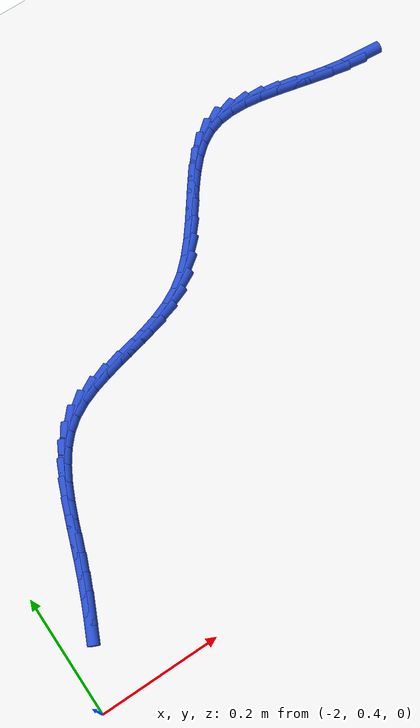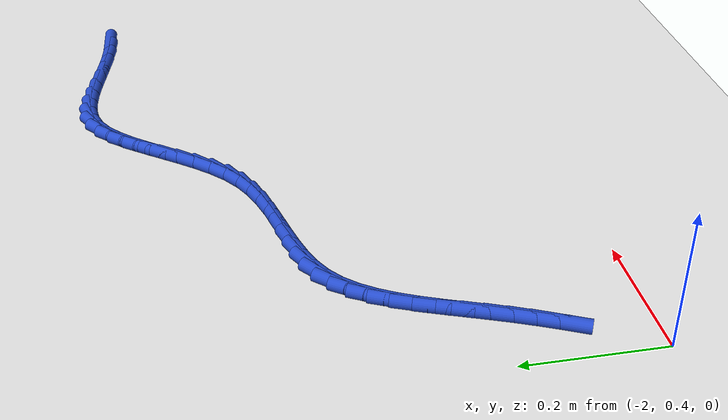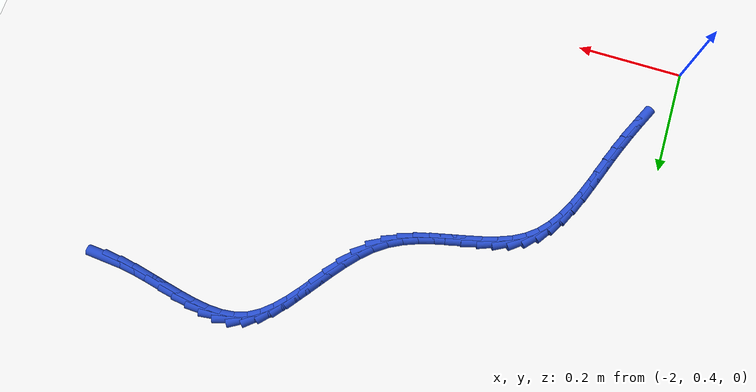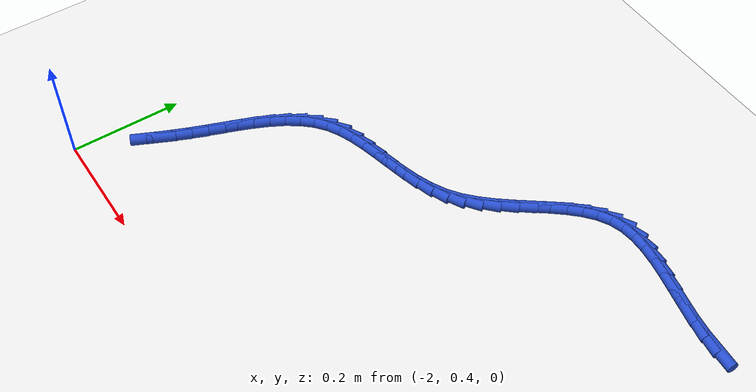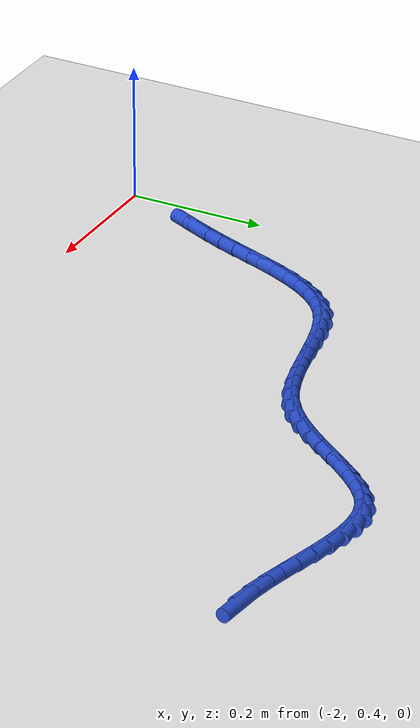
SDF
<sdf version="1.6">
 <world name="default">
  <model name="ground_plane">
   <static>1</static>
   <link name="link">
    <collision name="collision">
     <geometry><plane><normal>0 0 1</normal><size>100 100</size></plane></geometry>
     <surface><friction><ode><mu>100</mu><mu2>50</mu2></ode></friction></surface>
    </collision>
    <visual name="visual">
     <cast_shadows>0</cast_shadows>
     <geometry><plane><normal>0 0 1</normal><size>100 100</size></plane></geometry>
     <material>
      <script><uri>file://media/materials/scripts/gazebo.material</uri><name>Gazebo/WhiteGlow</name></script>
     </material>
    </visual>
   </link>
  </model>
  <model name="line">
   <link name="link_60">
    <pose>-1.07781493956136 1.054151082649088 0.01 0 1.57 -0.08685383289227389</pose>
    <collision name="collision">
     <geometry><cylinder><radius>0.01</radius><length>0.08</length></cylinder></geometry>
    </collision>
    <visual name="visual">
     <material>
      <script><name>Gazebo/Blue</name><uri>file://media/materials/scripts/gazebo.material</uri></script>
     </material>
     <geometry><cylinder><radius>0.01</radius><length>0.08</length></cylinder></geometry>
    </visual>
   </link>
   <link name="link_61">
    <pose>-1.1074726452328654 1.0567334648053341 0.01 0 1.57 -0.16320058160579007</pose>
    <collision name="collision">
     <geometry><cylinder><radius>0.01</radius><length>0.08</length></cylinder></geometry>
    </collision>
    <visual name="visual">
     <material>
      <script><name>Gazebo/Blue</name><uri>file://media/materials/scripts/gazebo.material</uri></script>
     </material>
     <geometry><cylinder><radius>0.01</radius><length>0.08</length></cylinder></geometry>
    </visual>
   </link>
   <link name="link_62">
    <pose>-1.1374213711710932 1.0616649748893732 0.01 0 1.57 -0.21079241466443946</pose>
    <collision name="collision">
     <geometry><cylinder><radius>0.01</radius><length>0.08</length></cylinder></geometry>
    </collision>
    <visual name="visual">
     <material>
      <script><name>Gazebo/Blue</name><uri>file://media/materials/scripts/gazebo.material</uri></script>
     </material>
     <geometry><cylinder><radius>0.01</radius><length>0.08</length></cylinder></geometry>
    </visual>
   </link>
   <link name="link_63">
    <pose>-1.1674057804091076 1.0680807688681473 0.01 0 1.57 -0.23210038443102482</pose>
    <collision name="collision">
     <geometry><cylinder><radius>0.01</radius><length>0.08</length></cylinder></geometry>
    </collision>
    <visual name="visual">
     <material>
      <script><name>Gazebo/Blue</name><uri>file://media/materials/scripts/gazebo.material</uri></script>
     </material>
     <geometry><cylinder><radius>0.01</radius><length>0.08</length></cylinder></geometry>
    </visual>
   </link>
   <link name="link_64">
    <pose>-1.197170528075788 1.075115964322302 0.01 0 1.57 -0.22778869949655273</pose>
    <collision name="collision">
     <geometry><cylinder><radius>0.01</radius><length>0.08</length></cylinder></geometry>
    </collision>
    <visual name="visual">
     <material>
      <script><name>Gazebo/Blue</name><uri>file://media/materials/scripts/gazebo.material</uri></script>
     </material>
     <geometry><cylinder><radius>0.01</radius><length>0.08</length></cylinder></geometry>
    </visual>
   </link>
   <link name="link_65">
    <pose>-1.226460269300016 1.0819056788324832 0.01 0 1.57 -0.19630020583996</pose>
    <collision name="collision">
     <geometry><cylinder><radius>0.01</radius><length>0.08</length></cylinder></geometry>
    </collision>
    <visual name="visual">
     <material>
      <script><name>Gazebo/Blue</name><uri>file://media/materials/scripts/gazebo.material</uri></script>
     </material>
     <geometry><cylinder><radius>0.01</radius><length>0.08</length></cylinder></geometry>
    </visual>
   </link>
   <link name="link_66">
    <pose>-1.2550196592106724 1.087585029979336 0.01 0 1.57 -0.13353533153890842</pose>
    <collision name="collision">
     <geometry><cylinder><radius>0.01</radius><length>0.08</length></cylinder></geometry>
    </collision>
    <visual name="visual">
     <material>
      <script><name>Gazebo/Blue</name><uri>file://media/materials/scripts/gazebo.material</uri></script>
     </material>
     <geometry><cylinder><radius>0.01</radius><length>0.08</length></cylinder></geometry>
    </visual>
   </link>
   <link name="link_67">
    <pose>-1.2825933529366376 1.0912891353435064 0.01 0 1.57 -0.03279834160013817</pose>
    <collision name="collision">
     <geometry><cylinder><radius>0.01</radius><length>0.08</length></cylinder></geometry>
    </collision>
    <visual name="visual">
     <material>
      <script><name>Gazebo/Blue</name><uri>file://media/materials/scripts/gazebo.material</uri></script>
     </material>
     <geometry><cylinder><radius>0.01</radius><length>0.08</length></cylinder></geometry>
    </visual>
   </link>
   <link name="link_68">
    <pose>-1.3089260056067928 1.0921531125056396 0.01 0 1.57 0.11389546006018933</pose>
    <collision name="collision">
     <geometry><cylinder><radius>0.01</radius><length>0.08</length></cylinder></geometry>
    </collision>
    <visual name="visual">
     <material>
      <script><name>Gazebo/Blue</name><uri>file://media/materials/scripts/gazebo.material</uri></script>
     </material>
     <geometry><cylinder><radius>0.01</radius><length>0.08</length></cylinder></geometry>
    </visual>
   </link>
   <link name="link_69">
    <pose>-1.3337622723500184 1.0893120790463815 0.01 0 1.57 0.31057913154186934</pose>
    <collision name="collision">
     <geometry><cylinder><radius>0.01</radius><length>0.08</length></cylinder></geometry>
    </collision>
    <visual name="visual">
     <material>
      <script><name>Gazebo/Blue</name><uri>file://media/materials/scripts/gazebo.material</uri></script>
     </material>
     <geometry><cylinder><radius>0.01</radius><length>0.08</length></cylinder></geometry>
    </visual>
   </link>
   <link name="link_70">
    <pose>-1.3568473407781851 1.081902552825048 0.01 0 1.57 0.5270692662035266</pose>
    <collision name="collision">
     <geometry><cylinder><radius>0.01</radius><length>0.08</length></cylinder></geometry>
    </collision>
    <visual name="visual">
     <material>
      <script><name>Gazebo/Blue</name><uri>file://media/materials/scripts/gazebo.material</uri></script>
     </material>
     <geometry><cylinder><radius>0.01</radius><length>0.08</length></cylinder></geometry>
    </visual>
   </link>
   <link name="link_71">
    <pose>-1.378105046972801 1.0695308463175381 0.01 0 1.57 0.6972795286389025</pose>
    <collision name="collision">
     <geometry><cylinder><radius>0.01</radius><length>0.08</length></cylinder></geometry>
    </collision>
    <visual name="visual">
     <material>
      <script><name>Gazebo/Blue</name><uri>file://media/materials/scripts/gazebo.material</uri></script>
     </material>
     <geometry><cylinder><radius>0.01</radius><length>0.08</length></cylinder></geometry>
    </visual>
   </link>
   <link name="link_72">
    <pose>-1.3978963240944338 1.0529527128826168 0.01 0 1.57 0.8140084168196782</pose>
    <collision name="collision">
     <geometry><cylinder><radius>0.01</radius><length>0.08</length></cylinder></geometry>
    </collision>
    <visual name="visual">
     <material>
      <script><name>Gazebo/Blue</name><uri>file://media/materials/scripts/gazebo.material</uri></script>
     </material>
     <geometry><cylinder><radius>0.01</radius><length>0.08</length></cylinder></geometry>
    </visual>
   </link>
   <link name="link_73">
    <pose>-1.416647716330988 1.033096444202458 0.01 0 1.57 0.8858924236731311</pose>
    <collision name="collision">
     <geometry><cylinder><radius>0.01</radius><length>0.08</length></cylinder></geometry>
    </collision>
    <visual name="visual">
     <material>
      <script><name>Gazebo/Blue</name><uri>file://media/materials/scripts/gazebo.material</uri></script>
     </material>
     <geometry><cylinder><radius>0.01</radius><length>0.08</length></cylinder></geometry>
    </visual>
   </link>
   <link name="link_74">
    <pose>-1.4347857678703682 1.010890331959236 0.01 0 1.57 0.9210806830847778</pose>
    <collision name="collision">
     <geometry><cylinder><radius>0.01</radius><length>0.08</length></cylinder></geometry>
    </collision>
    <visual name="visual">
     <material>
      <script><name>Gazebo/Blue</name><uri>file://media/materials/scripts/gazebo.material</uri></script>
     </material>
     <geometry><cylinder><radius>0.01</radius><length>0.08</length></cylinder></geometry>
    </visual>
   </link>
   <link name="link_75">
    <pose>-1.4527370229004775 0.9872626678351251 0.01 0 1.57 0.924639017326788</pose>
    <collision name="collision">
     <geometry><cylinder><radius>0.01</radius><length>0.08</length></cylinder></geometry>
    </collision>
    <visual name="visual">
     <material>
      <script><name>Gazebo/Blue</name><uri>file://media/materials/scripts/gazebo.material</uri></script>
     </material>
     <geometry><cylinder><radius>0.01</radius><length>0.08</length></cylinder></geometry>
    </visual>
   </link>
   <link name="link_76">
    <pose>-1.4709280256092212 0.9631417435122996 0.01 0 1.57 0.8984132760125781</pose>
    <collision name="collision">
     <geometry><cylinder><radius>0.01</radius><length>0.08</length></cylinder></geometry>
    </collision>
    <visual name="visual">
     <material>
      <script><name>Gazebo/Blue</name><uri>file://media/materials/scripts/gazebo.material</uri></script>
     </material>
     <geometry><cylinder><radius>0.01</radius><length>0.08</length></cylinder></geometry>
    </visual>
   </link>
   <link name="link_77">
    <pose>-1.4897853201845024 0.9394558506729336 0.01 0 1.57 0.8414616013713305</pose>
    <collision name="collision">
     <geometry><cylinder><radius>0.01</radius><length>0.08</length></cylinder></geometry>
    </collision>
    <visual name="visual">
     <material>
      <script><name>Gazebo/Blue</name><uri>file://media/materials/scripts/gazebo.material</uri></script>
     </material>
     <geometry><cylinder><radius>0.01</radius><length>0.08</length></cylinder></geometry>
    </visual>
   </link>
   <link name="link_78">
    <pose>-1.5097354508142264 0.9171332809992007 0.01 0 1.57 0.7507484248067657</pose>
    <collision name="collision">
     <geometry><cylinder><radius>0.01</radius><length>0.08</length></cylinder></geometry>
    </collision>
    <visual name="visual">
     <material>
      <script><name>Gazebo/Blue</name><uri>file://media/materials/scripts/gazebo.material</uri></script>
     </material>
     <geometry><cylinder><radius>0.01</radius><length>0.08</length></cylinder></geometry>
    </visual>
   </link>
   <link name="link_79">
    <pose>-1.5312049616862962 0.8971023261732756 0.01 0 1.57 0.6228361778062387</pose>
    <collision name="collision">
     <geometry><cylinder><radius>0.01</radius><length>0.08</length></cylinder></geometry>
    </collision>
    <visual name="visual">
     <material>
      <script><name>Gazebo/Blue</name><uri>file://media/materials/scripts/gazebo.material</uri></script>
     </material>
     <geometry><cylinder><radius>0.01</radius><length>0.08</length></cylinder></geometry>
    </visual>
   </link>
   <link name="link_80">
    <pose>-1.5546180450747338 0.8802870640450512 0.01 0 1.57 0.47849399703673734</pose>
    <collision name="collision">
     <geometry><cylinder><radius>0.01</radius><length>0.08</length></cylinder></geometry>
    </collision>
    <visual name="visual">
     <material>
      <script><name>Gazebo/Blue</name><uri>file://media/materials/scripts/gazebo.material</uri></script>
     </material>
     <geometry><cylinder><radius>0.01</radius><length>0.08</length></cylinder></geometry>
    </visual>
   </link>
   <link name="link_81">
    <pose>-1.5800972142202334 0.8670710659186509 0.01 0 1.57 0.3635431566051909</pose>
    <collision name="collision">
     <geometry><cylinder><radius>0.01</radius><length>0.08</length></cylinder></geometry>
    </collision>
    <visual name="visual">
     <material>
      <script><name>Gazebo/Blue</name><uri>file://media/materials/scripts/gazebo.material</uri></script>
     </material>
     <geometry><cylinder><radius>0.01</radius><length>0.08</length></cylinder></geometry>
    </visual>
   </link>
   <link name="link_82">
    <pose>-1.6071696480816027 0.8567712659085451 0.01 0 1.57 0.28343442764453936</pose>
    <collision name="collision">
     <geometry><cylinder><radius>0.01</radius><length>0.08</length></cylinder></geometry>
    </collision>
    <visual name="visual">
     <material>
      <script><name>Gazebo/Blue</name><uri>file://media/materials/scripts/gazebo.material</uri></script>
     </material>
     <geometry><cylinder><radius>0.01</radius><length>0.08</length></cylinder></geometry>
    </visual>
   </link>
   <link name="link_83">
    <pose>-1.6352927909781891 0.8485796572982865 0.01 0 1.57 0.23620248995738619</pose>
    <collision name="collision">
     <geometry><cylinder><radius>0.01</radius><length>0.08</length></cylinder></geometry>
    </collision>
    <visual name="visual">
     <material>
      <script><name>Gazebo/Blue</name><uri>file://media/materials/scripts/gazebo.material</uri></script>
     </material>
     <geometry><cylinder><radius>0.01</radius><length>0.08</length></cylinder></geometry>
    </visual>
   </link>
   <link name="link_84">
    <pose>-1.6639240872293413 0.8416882333714294 0.01 0 1.57 0.2201473657714273</pose>
    <collision name="collision">
     <geometry><cylinder><radius>0.01</radius><length>0.08</length></cylinder></geometry>
    </collision>
    <visual name="visual">
     <material>
      <script><name>Gazebo/Blue</name><uri>file://media/materials/scripts/gazebo.material</uri></script>
     </material>
     <geometry><cylinder><radius>0.01</radius><length>0.08</length></cylinder></geometry>
    </visual>
   </link>
   <link name="link_85">
    <pose>-1.6925209811544086 0.8352889874115267 0.01 0 1.57 0.23521729251704063</pose>
    <collision name="collision">
     <geometry><cylinder><radius>0.01</radius><length>0.08</length></cylinder></geometry>
    </collision>
    <visual name="visual">
     <material>
      <script><name>Gazebo/Blue</name><uri>file://media/materials/scripts/gazebo.material</uri></script>
     </material>
     <geometry><cylinder><radius>0.01</radius><length>0.08</length></cylinder></geometry>
    </visual>
   </link>
   <link name="link_86">
    <pose>-1.720540917072738 0.8285739127021323 0.01 0 1.57 0.2835526878963407</pose>
    <collision name="collision">
     <geometry><cylinder><radius>0.01</radius><length>0.08</length></cylinder></geometry>
    </collision>
    <visual name="visual">
     <material>
      <script><name>Gazebo/Blue</name><uri>file://media/materials/scripts/gazebo.material</uri></script>
     </material>
     <geometry><cylinder><radius>0.01</radius><length>0.08</length></cylinder></geometry>
    </visual>
   </link>
   <link name="link_87">
    <pose>-1.747441339303679 0.8207350025268 0.01 0 1.57 0.36937043772914335</pose>
    <collision name="collision">
     <geometry><cylinder><radius>0.01</radius><length>0.08</length></cylinder></geometry>
    </collision>
    <visual name="visual">
     <material>
      <script><name>Gazebo/Blue</name><uri>file://media/materials/scripts/gazebo.material</uri></script>
     </material>
     <geometry><cylinder><radius>0.01</radius><length>0.08</length></cylinder></geometry>
    </visual>
   </link>
   <link name="link_88">
    <pose>-1.7726796921665806 0.8109642501690836 0.01 0 1.57 0.49756325423144004</pose>
    <collision name="collision">
     <geometry><cylinder><radius>0.01</radius><length>0.08</length></cylinder></geometry>
    </collision>
    <visual name="visual">
     <material>
      <script><name>Gazebo/Blue</name><uri>file://media/materials/scripts/gazebo.material</uri></script>
     </material>
     <geometry><cylinder><radius>0.01</radius><length>0.08</length></cylinder></geometry>
    </visual>
   </link>
   <link name="link_89">
    <pose>-1.7957134199807907 0.7984536489125361 0.01 0 1.57 0.6668960356011395</pose>
    <collision name="collision">
     <geometry><cylinder><radius>0.01</radius><length>0.08</length></cylinder></geometry>
    </collision>
    <visual name="visual">
     <material>
      <script><name>Gazebo/Blue</name><uri>file://media/materials/scripts/gazebo.material</uri></script>
     </material>
     <geometry><cylinder><radius>0.01</radius><length>0.08</length></cylinder></geometry>
    </visual>
   </link>
   <link name="link_90">
    <pose>-1.8160398402949596 0.78245239950786 0.01 0 1.57 0.8343778227243892</pose>
    <collision name="collision">
     <geometry><cylinder><radius>0.01</radius><length>0.08</length></cylinder></geometry>
    </collision>
    <visual name="visual">
     <material>
      <script><name>Gazebo/Blue</name><uri>file://media/materials/scripts/gazebo.material</uri></script>
     </material>
     <geometry><cylinder><radius>0.01</radius><length>0.08</length></cylinder></geometry>
    </visual>
   </link>
   <link name="link_91">
    <pose>-1.8336928380714483 0.762979534074568 0.01 0 1.57 0.9680338201380663</pose>
    <collision name="collision">
     <geometry><cylinder><radius>0.01</radius><length>0.08</length></cylinder></geometry>
    </collision>
    <visual name="visual">
     <material>
      <script><name>Gazebo/Blue</name><uri>file://media/materials/scripts/gazebo.material</uri></script>
     </material>
     <geometry><cylinder><radius>0.01</radius><length>0.08</length></cylinder></geometry>
    </visual>
   </link>
   <link name="link_92">
    <pose>-1.8490906395030007 0.7406055120606266 0.01 0 1.57 1.0683202253243422</pose>
    <collision name="collision">
     <geometry><cylinder><radius>0.01</radius><length>0.08</length></cylinder></geometry>
    </collision>
    <visual name="visual">
     <material>
      <script><name>Gazebo/Blue</name><uri>file://media/materials/scripts/gazebo.material</uri></script>
     </material>
     <geometry><cylinder><radius>0.01</radius><length>0.08</length></cylinder></geometry>
    </visual>
   </link>
   <link name="link_93">
    <pose>-1.8626598322661159 0.7159127894168086 0.01 0 1.57 1.139350122033735</pose>
    <collision name="collision">
     <geometry><cylinder><radius>0.01</radius><length>0.08</length></cylinder></geometry>
    </collision>
    <visual name="visual">
     <material>
      <script><name>Gazebo/Blue</name><uri>file://media/materials/scripts/gazebo.material</uri></script>
     </material>
     <geometry><cylinder><radius>0.01</radius><length>0.08</length></cylinder></geometry>
    </visual>
   </link>
   <link name="link_94">
    <pose>-1.874827004037294 0.6894838220938889 0.01 0 1.57 1.1853418069833277</pose>
    <collision name="collision">
     <geometry><cylinder><radius>0.01</radius><length>0.08</length></cylinder></geometry>
    </collision>
    <visual name="visual">
     <material>
      <script><name>Gazebo/Blue</name><uri>file://media/materials/scripts/gazebo.material</uri></script>
     </material>
     <geometry><cylinder><radius>0.01</radius><length>0.08</length></cylinder></geometry>
    </visual>
   </link>
   <link name="link_95">
    <pose>-1.8860187424930346 0.6619010660426407 0.01 0 1.57 1.2093780022265668</pose>
    <collision name="collision">
     <geometry><cylinder><radius>0.01</radius><length>0.08</length></cylinder></geometry>
    </collision>
    <visual name="visual">
     <material>
      <script><name>Gazebo/Blue</name><uri>file://media/materials/scripts/gazebo.material</uri></script>
     </material>
     <geometry><cylinder><radius>0.01</radius><length>0.08</length></cylinder></geometry>
    </visual>
   </link>
   <link name="link_96">
    <pose>-1.8966616353098378 0.6337469772138371 0.01 0 1.57 1.2130533630033478</pose>
    <collision name="collision">
     <geometry><cylinder><radius>0.01</radius><length>0.08</length></cylinder></geometry>
    </collision>
    <visual name="visual">
     <material>
      <script><name>Gazebo/Blue</name><uri>file://media/materials/scripts/gazebo.material</uri></script>
     </material>
     <geometry><cylinder><radius>0.01</radius><length>0.08</length></cylinder></geometry>
    </visual>
   </link>
   <link name="link_97">
    <pose>-1.9071822701642025 0.6056040115582528 0.01 0 1.57 1.1969133831656447</pose>
    <collision name="collision">
     <geometry><cylinder><radius>0.01</radius><length>0.08</length></cylinder></geometry>
    </collision>
    <visual name="visual">
     <material>
      <script><name>Gazebo/Blue</name><uri>file://media/materials/scripts/gazebo.material</uri></script>
     </material>
     <geometry><cylinder><radius>0.01</radius><length>0.08</length></cylinder></geometry>
    </visual>
   </link>
   <link name="link_98">
    <pose>-1.9179968132319192 0.5780395889613043 0.01 0 1.57 1.1716663906406468</pose>
    <collision name="collision">
     <geometry><cylinder><radius>0.01</radius><length>0.08</length></cylinder></geometry>
    </collision>
    <visual name="visual">
     <material>
      <script><name>Gazebo/Blue</name><uri>file://media/materials/scripts/gazebo.material</uri></script>
     </material>
     <geometry><cylinder><radius>0.01</radius><length>0.08</length></cylinder></geometry>
    </visual>
   </link>
   <link name="link_99">
    <pose>-1.9292838485955535 0.5512783475938716 0.01 0 1.57 1.1489582242729164</pose>
    <collision name="collision">
     <geometry><cylinder><radius>0.01</radius><length>0.08</length></cylinder></geometry>
    </collision>
    <visual name="visual">
     <material>
      <script><name>Gazebo/Blue</name><uri>file://media/materials/scripts/gazebo.material</uri></script>
     </material>
     <geometry><cylinder><radius>0.01</radius><length>0.08</length></cylinder></geometry>
    </visual>
   </link>
   <link name="link_100">
    <pose>-1.9409855459205474 0.5252038286268725 0.01 0 1.57 1.1296897888716892</pose>
    <collision name="collision">
     <geometry><cylinder><radius>0.01</radius><length>0.08</length></cylinder></geometry>
    </collision>
    <visual name="visual">
     <material>
      <script><name>Gazebo/Blue</name><uri>file://media/materials/scripts/gazebo.material</uri></script>
     </material>
     <geometry><cylinder><radius>0.01</radius><length>0.08</length></cylinder></geometry>
    </visual>
   </link>
  </model>
 </world>
</sdf>
